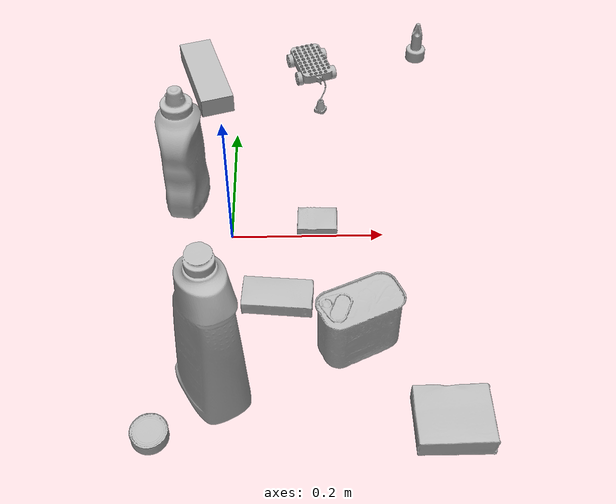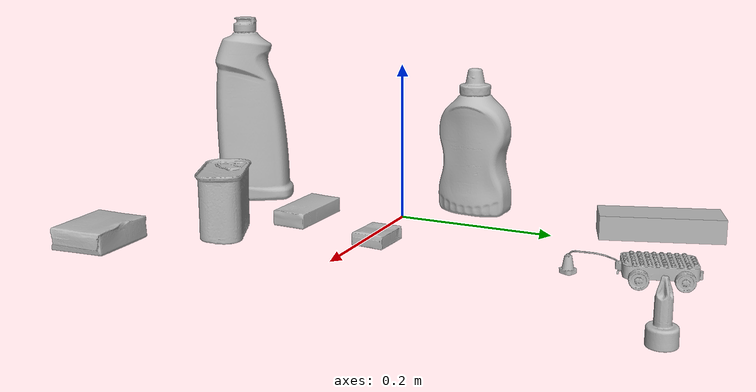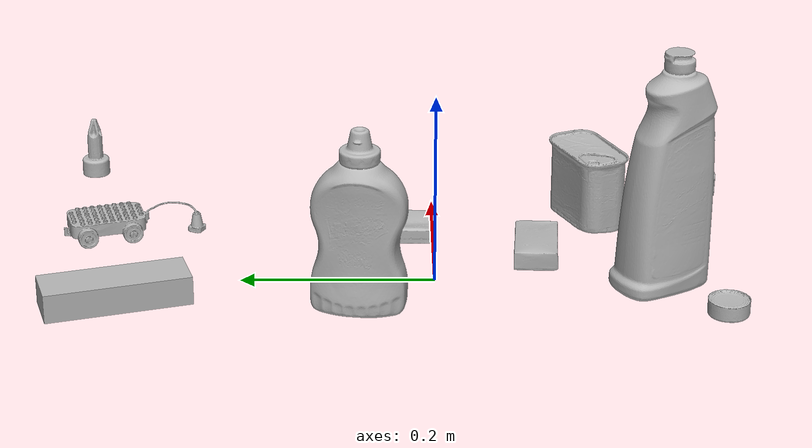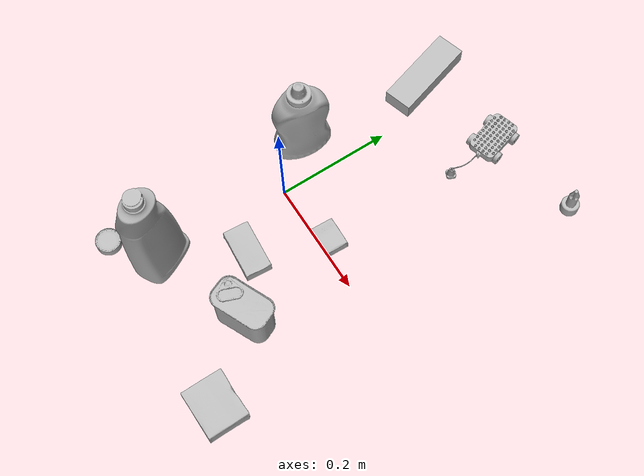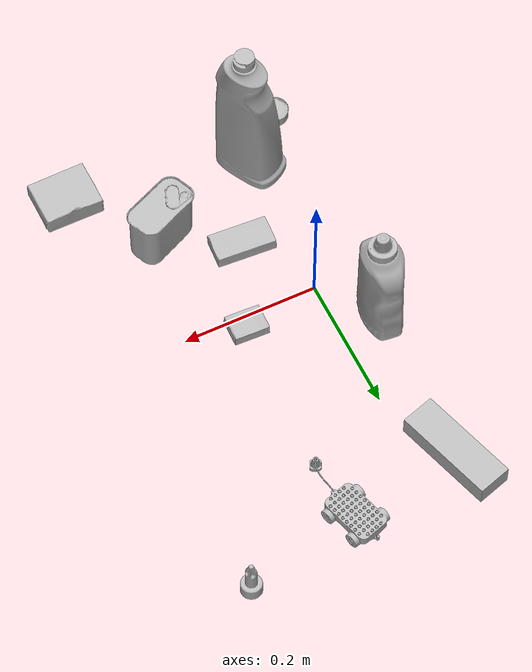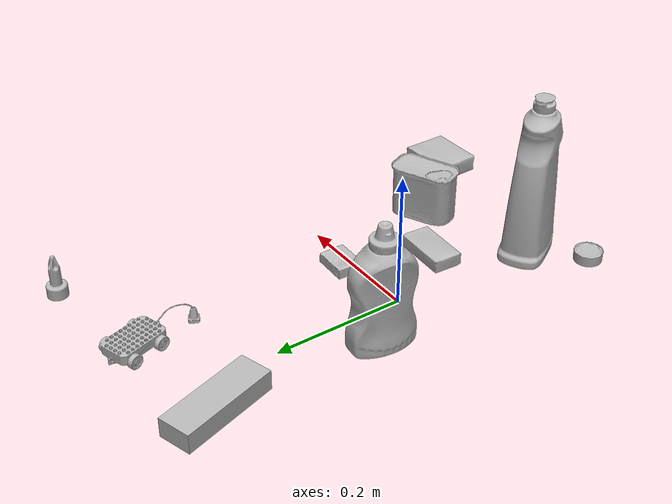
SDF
<sdf version="1.4">
  <world name="default">
    <light name="light1" type="point">
      <pose>0 0 1 0 0 0</pose>
      <diffuse>3 3 3 1</diffuse>
      <specular>3 3 3 1</specular>
    </light>
    <light name="light2" type="point">
      <pose>0 0.5 2 0 0 0</pose>
      <diffuse>1 1 1 1</diffuse>
      <specular>1 1 1 1</specular>
    </light>
    <light name="light3" type="point">
      <pose>0 0.5 2 0 0 0</pose>
      <diffuse>3 3 3 1</diffuse>
      <specular>3 3 3 1</specular>
    </light>
    <scene>
      <ambient>0.7 0.7 0.7</ambient>
    </scene>
    <model name="bottle1">
      <link name="link_bottle1">
        <collision name="default">
          <geometry>
            <mesh>
              <uri>model://bleach_cleanser/collision_meshes/collision.obj</uri>
              <scale>1.0 1.0 1.0</scale>
            </mesh>
          </geometry>
          <surface>
            <friction>
              <ode>
                <mu>0.5</mu>
                <mu2>0.5</mu2>
              </ode>
            </friction>
          <contact>
        <ode>
            <max_vel>0</max_vel>
            <min_depth>0.0001</min_depth>
            <kp>1e8</kp>
        </ode>
    </contact></surface>
        </collision>
        <visual name="default">
          <geometry>
            <mesh>
              <uri>model://bleach_cleanser/visual_meshes/visual.dae</uri>
              <scale>1.0 1.0 1.0</scale>
            </mesh>
          </geometry>
        </visual>
        <inertial>
          <mass>0.8435376882553101</mass>
          <pose>0.00012193185102660209 0.0037838835269212723 -0.02442161925137043 -0.0738167136291003 0.00042011570398771517 -0.0068750683244174</pose>
          <inertia>
            <ixx>0.0041056215</ixx>
            <iyy>0.0038258375</iyy>
            <izz>0.0007019545</izz>
            <ixy>0</ixy>
            <ixz>0</ixz>
            <iyz>0</iyz>
          </inertia>
        </inertial>
      </link>
      <pose>-0.010891293175518513 -0.2301902025938034 0.1257675290107727 -0.0031816423934555647 0.0041394798079901094 -2.627356332998753</pose>
    </model>
    <model name="bottle2">
      <link name="link_bottle2">
        <collision name="default">
          <geometry>
            <mesh>
              <uri>model://mustard_bottle/collision_meshes/collision.obj</uri>
              <scale>1.0 1.0 1.0</scale>
            </mesh>
          </geometry>
          <surface>
            <friction>
              <ode>
                <mu>0.5</mu>
                <mu2>0.5</mu2>
              </ode>
            </friction>
          <contact>
        <ode>
            <max_vel>0</max_vel>
            <min_depth>0.0001</min_depth>
            <kp>1e8</kp>
        </ode>
    </contact></surface>
        </collision>
        <visual name="default">
          <geometry>
            <mesh>
              <uri>model://mustard_bottle/visual_meshes/visual.dae</uri>
              <scale>1.0 1.0 1.0</scale>
            </mesh>
          </geometry>
        </visual>
        <inertial>
          <mass>0.5862947106361389</mass>
          <pose>0.0005032453336752951 -0.00015647400869056582 -0.01747579500079155 0.0004182326333961274 0.0009465780125852031 0.02485369627950655</pose>
          <inertia>
            <ixx>0.0016280604</ixx>
            <iyy>0.001428485</iyy>
            <izz>0.00042907606</izz>
            <ixy>0</ixy>
            <ixz>0</ixz>
            <iyz>0</iyz>
          </inertia>
        </inertial>
      </link>
      <pose>-0.06225956231355667 0.07611524313688278 0.09583089500665665 -0.012050300507278535 -0.004890107854401617 3.007530491499124</pose>
    </model>
    <model name="toy1">
      <link name="link_toy1">
        <collision name="default">
          <geometry>
            <mesh>
              <uri>model://d_toy_airplane/collision_meshes/collision.obj</uri>
              <scale>1.0 1.0 1.0</scale>
            </mesh>
          </geometry>
          <surface>
            <friction>
              <ode>
                <mu>0.5</mu>
                <mu2>0.5</mu2>
              </ode>
            </friction>
          <contact>
        <ode>
            <max_vel>0</max_vel>
            <min_depth>0.0001</min_depth>
            <kp>1e8</kp>
        </ode>
    </contact></surface>
        </collision>
        <visual name="default">
          <geometry>
            <mesh>
              <uri>model://d_toy_airplane/visual_meshes/visual.dae</uri>
              <scale>1.0 1.0 1.0</scale>
            </mesh>
          </geometry>
        </visual>
        <inertial>
          <mass>0.016342557966709137</mass>
          <pose>9.410292841494083e-05 -5.809347931062803e-05 -0.011728093959391117 0.0002665850352305412 0.004678995185611379 0.5193821656772198</pose>
          <inertia>
            <ixx>4.8991824e-06</ixx>
            <iyy>4.9028777e-06</iyy>
            <izz>1.4790946e-06</izz>
            <ixy>0</ixy>
            <ixz>0</ixz>
            <iyz>0</iyz>
          </inertia>
        </inertial>
      </link>
      <pose>0.28352490067481995 0.3844567537307739 0.033338382840156555 0.00022181495451000855 -5.577763956955601e-05 -0.07078304935867583</pose>
    </model>
    <model name="toy2">
      <link name="link_toy2">
        <collision name="default">
          <geometry>
            <mesh>
              <uri>model://g_lego_duplo/collision_meshes/collision.obj</uri>
              <scale>0.5 0.5 0.5</scale>
            </mesh>
          </geometry>
          <surface>
            <friction>
              <ode>
                <mu>0.5</mu>
                <mu2>0.5</mu2>
              </ode>
            </friction>
          <contact>
        <ode>
            <max_vel>0</max_vel>
            <min_depth>0.0001</min_depth>
            <kp>1e8</kp>
        </ode>
    </contact></surface>
        </collision>
        <visual name="default">
          <geometry>
            <mesh>
              <uri>model://g_lego_duplo/visual_meshes/visual.dae</uri>
              <scale>0.5 0.5 0.5</scale>
            </mesh>
          </geometry>
        </visual>
        <inertial>
          <mass>0.06075087562203407</mass>
          <pose>-0.02502383105456829 0.0008777320035733283 0.0019403373589739203 0.010962969944672394 0.038108282316868566 -0.09653022106038826</pose>
          <inertia>
            <ixx>2.2007183e-05</ixx>
            <iyy>6.65348e-05</iyy>
            <izz>8.323752e-05</izz>
            <ixy>0</ixy>
            <ixz>0</ixz>
            <iyz>0</iyz>
          </inertia>
        </inertial>
      </link>
      <pose>0.1195855587720871 0.32179298996925354 0.014837180264294147 -0.0014817404087748337 -0.0050228099912355845 -1.2862955547819002</pose>
    </model>
    <model name="can1">
      <link name="link_can1">
        <collision name="default">
          <geometry>
            <mesh>
              <uri>model://potted_meat_can/collision_meshes/collision.obj</uri>
              <scale>1.0 1.0 1.0</scale>
            </mesh>
          </geometry>
          <surface>
            <friction>
              <ode>
                <mu>0.5</mu>
                <mu2>0.5</mu2>
              </ode>
            </friction>
          <contact>
        <ode>
            <max_vel>0</max_vel>
            <min_depth>0.0001</min_depth>
            <kp>1e8</kp>
        </ode>
    </contact></surface>
        </collision>
        <visual name="default">
          <geometry>
            <mesh>
              <uri>model://potted_meat_can/visual_meshes/visual.dae</uri>
              <scale>1.0 1.0 1.0</scale>
            </mesh>
          </geometry>
        </visual>
        <inertial>
          <mass>0.20078136026859283</mass>
          <pose>0.00022888144303578883 -5.9891190176131204e-05 -0.0006367445457726717 -0.02809335636395505 -0.007232596981483405 0.015406261474000347</pose>
          <inertia>
            <ixx>0.0002582842</ixx>
            <iyy>0.00015692727</iyy>
            <izz>0.0001878526</izz>
            <ixy>0</ixy>
            <ixz>0</ixz>
            <iyz>0</iyz>
          </inertia>
        </inertial>
      </link>
      <pose>0.15683089196681976 -0.1692480593919754 0.042128004133701324 -4.109826136442802e-08 -4.967045623663219e-07 -1.1590938563850168</pose>
    </model>
    <model name="can2">
      <link name="link_can2">
        <collision name="default">
          <geometry>
            <mesh>
              <uri>model://tuna_fish_can/collision_meshes/collision.obj</uri>
              <scale>0.5 0.5 0.5</scale>
            </mesh>
          </geometry>
          <surface>
            <friction>
              <ode>
                <mu>0.5</mu>
                <mu2>0.5</mu2>
              </ode>
            </friction>
          <contact>
        <ode>
            <max_vel>0</max_vel>
            <min_depth>0.0001</min_depth>
            <kp>1e8</kp>
        </ode>
    </contact></surface>
        </collision>
        <visual name="default">
          <geometry>
            <mesh>
              <uri>model://tuna_fish_can/visual_meshes/visual.dae</uri>
              <scale>0.5 0.5 0.5</scale>
            </mesh>
          </geometry>
        </visual>
        <inertial>
          <mass>0.014736190438270569</mass>
          <pose>-2.036184559983667e-05 -7.256420758494642e-06 -0.0005269023822620511 -0.0017944748482382063 0.00017166274907885265 0.24056368509195397</pose>
          <inertia>
            <ixx>1.992355e-06</ixx>
            <iyy>1.9840513e-06</iyy>
            <izz>3.409204e-06</izz>
            <ixy>0</ixy>
            <ixz>0</ixz>
            <iyz>0</iyz>
          </inertia>
        </inertial>
      </link>
      <pose>-0.07801494747400284 -0.2903590202331543 0.008520001545548439 1.6032798106009267e-08 -1.1355200446165783e-09 2.150068498081454</pose>
    </model>
    <model name="box1">
      <link name="link_box1">
        <collision name="default">
          <geometry>
            <mesh>
              <uri>model://sugar_box/collision_meshes/collision.obj</uri>
              <scale>0.5 0.5 0.5</scale>
            </mesh>
          </geometry>
          <surface>
            <friction>
              <ode>
                <mu>0.5</mu>
                <mu2>0.5</mu2>
              </ode>
            </friction>
          <contact>
        <ode>
            <max_vel>0</max_vel>
            <min_depth>0.0001</min_depth>
            <kp>1e8</kp>
        </ode>
    </contact></surface>
        </collision>
        <visual name="default">
          <geometry>
            <mesh>
              <uri>model://sugar_box/visual_meshes/visual.dae</uri>
              <scale>0.5 0.5 0.5</scale>
            </mesh>
          </geometry>
        </visual>
        <inertial>
          <mass>0.12222740799188614</mass>
          <pose>0.0005171863595023751 1.9245549992774613e-05 -0.00018182404164690524 -0.000404625834306888 0.0010506637544316808 0.0026153790219515644</pose>
          <inertia>
            <ixx>2.5459884e-05</ixx>
            <iyy>8.229157e-05</iyy>
            <izz>9.851283e-05</izz>
            <ixy>0</ixy>
            <ixz>0</ixz>
            <iyz>0</iyz>
          </inertia>
        </inertial>
      </link>
      <pose>0.061038676649332047 -0.10799229145050049 0.011399301700294018 0.000774781702143738 -0.023433101553442488 3.0624689631295725</pose>
    </model>
    <model name="box2">
      <link name="link_box2">
        <collision name="default">
          <geometry>
            <mesh>
              <uri>model://jenga/collision_meshes/collision.obj</uri>
              <scale>1.0 1.0 1.0</scale>
            </mesh>
          </geometry>
          <surface>
            <friction>
              <ode>
                <mu>0.5</mu>
                <mu2>0.5</mu2>
              </ode>
            </friction>
          <contact>
        <ode>
            <max_vel>0</max_vel>
            <min_depth>0.0001</min_depth>
            <kp>1e8</kp>
        </ode>
    </contact></surface>
        </collision>
        <visual name="default">
          <geometry>
            <mesh>
              <uri>model://jenga/visual_meshes/visual.dae</uri>
              <scale>1.0 1.0 1.0</scale>
            </mesh>
          </geometry>
        </visual>
        <inertial>
          <mass>0.17645145952701569</mass>
          <pose>-2.502855807051674e-07 -0.00010250011109746993 -4.0923405322246253e-05 0.0 -7.342155186052628e-07 0.0</pose>
          <inertia>
            <ixx>4.8828406e-05</ixx>
            <iyy>0.00033085994</iyy>
            <izz>0.00035322108</izz>
            <ixy>0</ixy>
            <ixz>0</ixz>
            <iyz>0</iyz>
          </inertia>
        </inertial>
      </link>
      <pose>-0.052666112780570984 0.32219114899635315 0.014999995008111 1.8665929370615772e-08 1.7600035042518029e-09 1.8657763328442256</pose>
    </model>
    <model name="box3">
      <link name="link_box3">
        <collision name="default">
          <geometry>
            <mesh>
              <uri>model://gelatin_box/collision_meshes/collision.obj</uri>
              <scale>1.0 1.0 1.0</scale>
            </mesh>
          </geometry>
          <surface>
            <friction>
              <ode>
                <mu>0.5</mu>
                <mu2>0.5</mu2>
              </ode>
            </friction>
          <contact>
        <ode>
            <max_vel>0</max_vel>
            <min_depth>0.0001</min_depth>
            <kp>1e8</kp>
        </ode>
    </contact></surface>
        </collision>
        <visual name="default">
          <geometry>
            <mesh>
              <uri>model://gelatin_box/visual_meshes/visual.dae</uri>
              <scale>1.0 1.0 1.0</scale>
            </mesh>
          </geometry>
        </visual>
        <inertial>
          <mass>0.13059620559215546</mass>
          <pose>0.0004319618456065655 0.00011156871914863586 -0.0003640321083366871 -0.0010503721928909568 -0.00475581775899517 0.01644055574591333</pose>
          <inertia>
            <ixx>9.219027e-05</ixx>
            <iyy>6.585102e-05</iyy>
            <izz>0.00014033413</izz>
            <ixy>0</ixy>
            <ixz>0</ixz>
            <iyz>0</iyz>
          </inertia>
        </inertial>
      </link>
      <pose>0.2551810145378113 -0.28201618790626526 0.015168319456279278 0.005597410022630728 -0.007304474209702649 1.5709129451921433</pose>
    </model>
    <model name="box4">
      <link name="link_box4">
        <collision name="default">
          <geometry>
            <mesh>
              <uri>model://cracker_box/collision_meshes/collision.obj</uri>
              <scale>0.25 0.25 0.25</scale>
            </mesh>
          </geometry>
          <surface>
            <friction>
              <ode>
                <mu>0.5</mu>
                <mu2>0.5</mu2>
              </ode>
            </friction>
          <contact>
        <ode>
            <max_vel>0</max_vel>
            <min_depth>0.0001</min_depth>
            <kp>1e8</kp>
        </ode>
    </contact></surface>
        </collision>
        <visual name="default">
          <geometry>
            <mesh>
              <uri>model://cracker_box/visual_meshes/visual.dae</uri>
              <scale>0.25 0.25 0.25</scale>
            </mesh>
          </geometry>
        </visual>
        <inertial>
          <mass>0.04771818593144417</mass>
          <pose>0.0002366032567806542 6.358561950037256e-05 -0.00042573839891701937 -0.00031620769108308636 -0.011106489600173282 0.0025467959336867136</pose>
          <inertia>
            <ixx>7.5858593e-06</ixx>
            <iyy>1.2525745e-05</iyy>
            <izz>1.7875387e-05</izz>
            <ixy>0</ixy>
            <ixz>0</ixz>
            <iyz>0</iyz>
          </inertia>
        </inertial>
      </link>
      <pose>0.11351896822452545 0.017452919855713844 0.009096025489270687 -0.014050477282139021 -0.005016655146577248 -0.03524880962805771</pose>
    </model>
  <physics type="ode">
      <max_contacts>50</max_contacts>
      <ode>
        <solver>
          <type>quick</type>
          <iters>75</iters>
        </solver>
        <constraints>
          <contact_max_correcting_vel>0</contact_max_correcting_vel>
          <contact_surface_layer>0</contact_surface_layer>
        </constraints>
      </ode>
    </physics></world>
</sdf>
